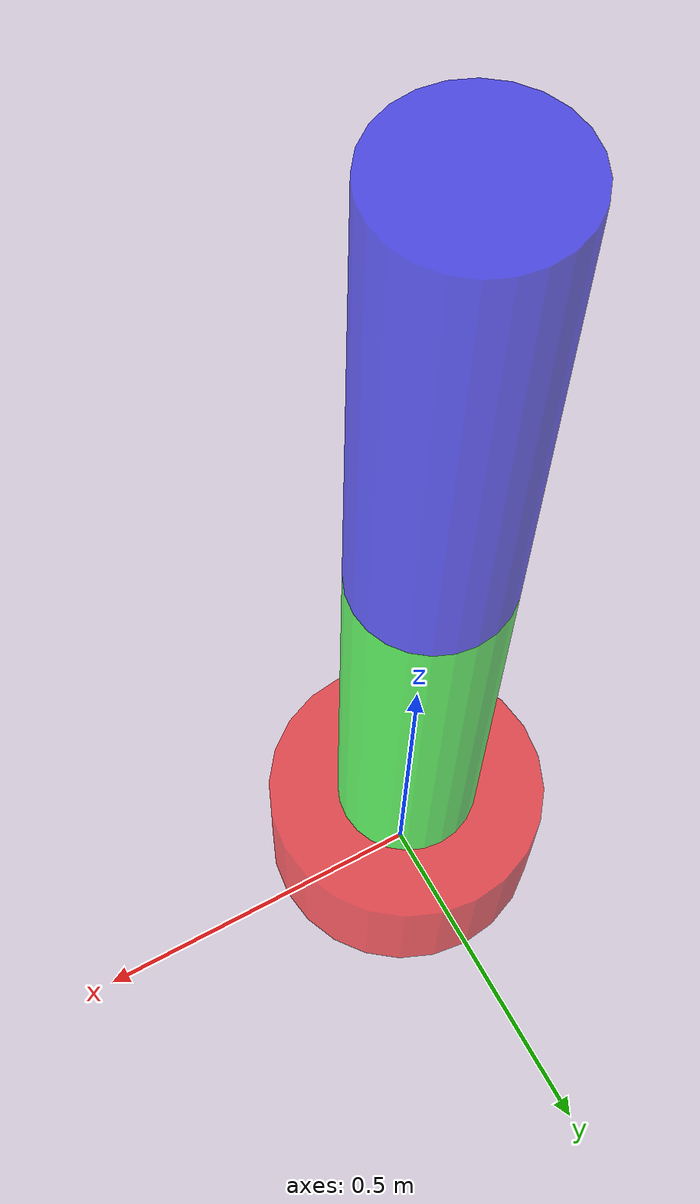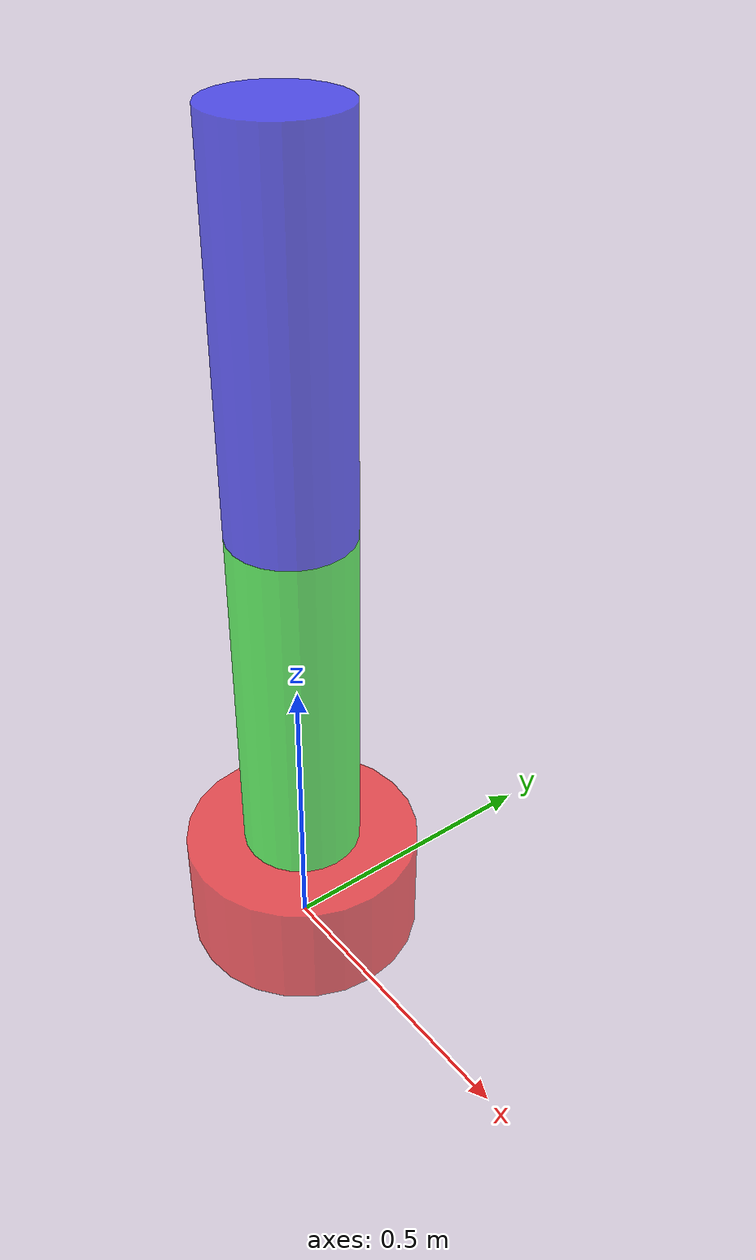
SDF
<sdf version='1.6'>
<world name='default'>
  <model name='simple_rr_sdf'>
    <plugin name='set_joint_velocity_plugin' filename='libSetJointVelocityPlugin.so'/>
    <!-- A simple rr robot with three links and two revolute joints -->

    <link name='link_0'>
      <pose frame=''>0 0 0.0 0 -0 0</pose>
      <inertial>
        <pose frame=''>0 0 0.1 0 -0 0</pose>
        <mass>0.01</mass>
        <inertia>
          <ixx>0.05</ixx>
          <ixy>0</ixy>
          <ixz>0</ixz>
          <iyy>0.06</iyy>
          <iyz>0</iyz>
          <izz>0.03</izz>
        </inertia>
      </inertial>
      <collision name='link_0_collision'>
        <pose frame=''>0 0 0.1 0 -0 0</pose>
        <geometry>
            <cylinder>
                <length>0.2</length>
                <radius>0.2</radius>
            </cylinder>
        </geometry>
      </collision>
      <visual name='link_0_visual'>
        <pose frame=''>0 0 0.1 0 -0 0</pose>
        <geometry>
            <cylinder>
                <length>0.2</length>
                <radius>0.2</radius>
            </cylinder>
        </geometry>
        <material>
            <ambient>1 0 0 0.6</ambient>
            <diffuse>1 0 0 0.6</diffuse>
        </material>
      </visual>
    </link>

    <link name='link_1'>
      <pose frame=''>0 0 0 0 -0 0</pose>
      <inertial>
        <pose frame=''>0 0 0.5 0 -0 0</pose>
        <mass>0.01</mass>
        <inertia>
          <ixx>0.05</ixx>
          <ixy>0</ixy>
          <ixz>0</ixz>
          <iyy>0.06</iyy>
          <iyz>0</iyz>
          <izz>0.03</izz>
        </inertia>
      </inertial>
      <collision name='link_1_collision'>
        <pose frame=''>0 0 0.5 0 -0 0</pose>
        <geometry>
            <cylinder>
                <length>0.6</length>
                <radius>0.1</radius>
            </cylinder>
        </geometry>
      </collision>
      <visual name='link_1_visual'>
        <pose frame=''>0 0 0.5 0 -0 0</pose>
        <geometry>
            <cylinder>
                <length>0.6</length>
                <radius>0.1</radius>
            </cylinder>
        </geometry>
        <material>
            <ambient>0 1 0 0.6</ambient>
            <diffuse>0 1 0 0.6</diffuse>
        </material>
      </visual>
    </link>

    <link name='link_2'>
      <pose frame=''>0 0 0 0 -0 0</pose>
      <inertial>
        <pose frame=''>0 0 1.1 0 -0 0</pose>
        <mass>0.01</mass>
        <inertia>
          <ixx>0.05</ixx>
          <ixy>0</ixy>
          <ixz>0</ixz>
          <iyy>0.06</iyy>
          <iyz>0</iyz>
          <izz>0.03</izz>
        </inertia>
      </inertial>
      <collision name='link_2_collision'>
        <pose frame=''>0 0 1.1 0 -0 0</pose>
        <geometry>
            <cylinder>
                <length>0.6</length>
                <radius>0.1</radius>
            </cylinder>
        </geometry>
      </collision>
      <visual name='link_2_visual'>
        <pose frame=''>0 0 1.1 0 -0 0</pose>
        <geometry>
            <cylinder>
                <length>0.6</length>
                <radius>0.1</radius>
            </cylinder>
        </geometry>
        <material>
            <ambient>0 0 1 0.6</ambient>
            <diffuse>0 0 1 0.6</diffuse>
        </material>
      </visual>
    </link>

    <joint name='joint_1' type='revolute'>
      <pose frame=''>0 0 0.2 0 -0 0</pose>
      <child>link_1</child>
      <parent>link_0</parent>
      <axis>
        <xyz>0 0 1</xyz>
        <limit>
          <effort>300</effort>
          <velocity>10</velocity>
        </limit>
        <dynamics>
          <damping>0.5</damping>
          <friction>0</friction>
          <spring_reference>0</spring_reference>
          <spring_stiffness>0</spring_stiffness>
        </dynamics>
        <use_parent_model_frame>0</use_parent_model_frame>
      </axis>
    </joint>

    <joint name='joint_2' type='revolute'>
      <pose frame=''>0 0 0.8 0 -0 0</pose>
      <child>link_2</child>
      <parent>link_1</parent>
      <axis>
        <xyz>0 1 0</xyz>
        <limit>
          <effort>300</effort>
          <velocity>10</velocity>
        </limit>
        <dynamics>
          <damping>0.5</damping>
          <friction>0</friction>
          <spring_reference>0</spring_reference>
          <spring_stiffness>0</spring_stiffness>
        </dynamics>
        <use_parent_model_frame>0</use_parent_model_frame>
      </axis>
    </joint>

  </model>
</world>
</sdf>
